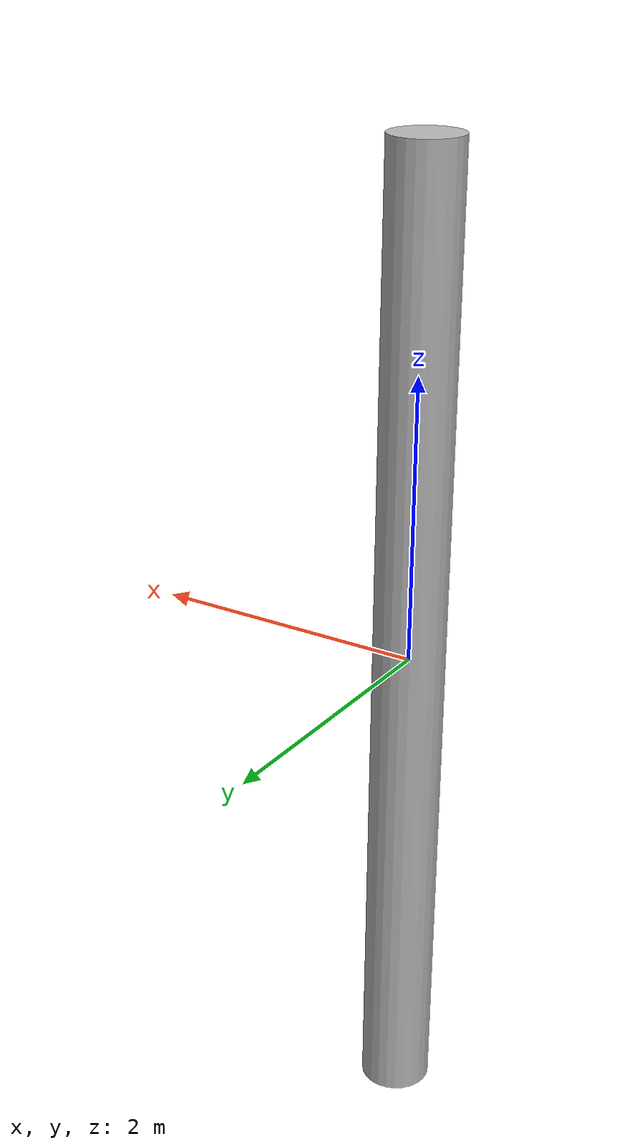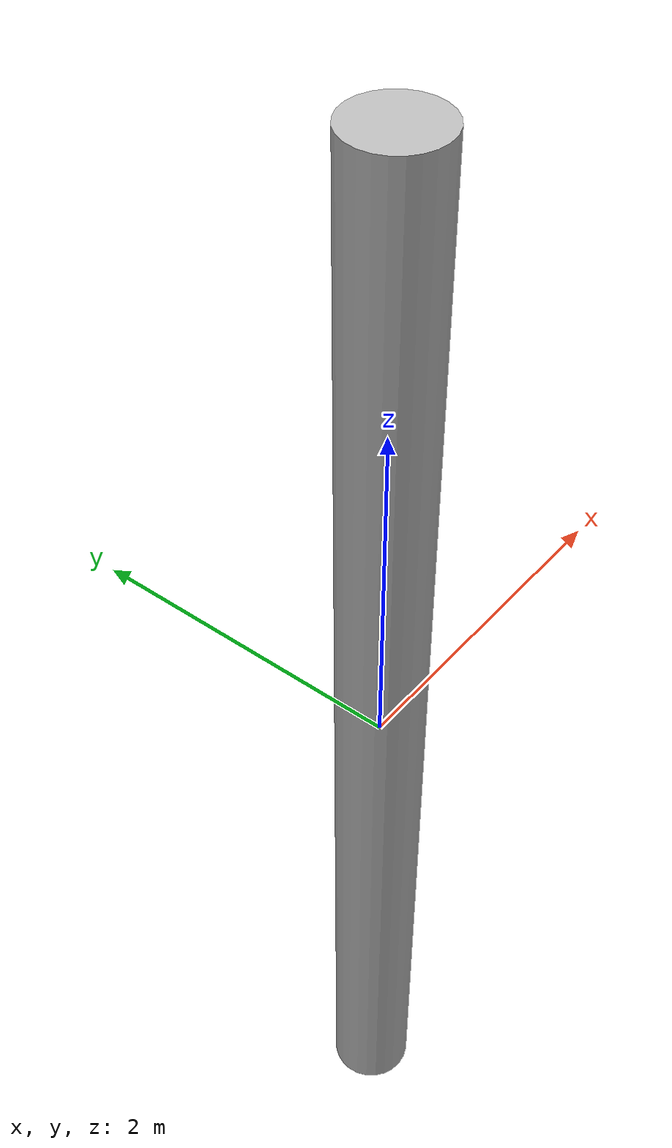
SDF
<?xml version="1.0" ?>
<sdf version="1.5">
  <model name="cylinder_obstacle">
    <static>true</static>
    <link name="link">
      <collision name="collision">
        <geometry>
          <cylinder>
            <radius>0.25</radius>
            <length>7</length>
          </cylinder>
        </geometry>
      </collision>
      <visual name="visual">
        <cast_shadows>false</cast_shadows>
        <geometry>
          <cylinder>
            <radius>0.25</radius>
            <length>7</length>
          </cylinder>
        </geometry>
        <material>
          <script>
            <uri>model://cylinder_obstacle/materials/scripts</uri>
            <uri>model://cylinder_obstacle/materials/textures</uri>
            <name>vrc/obstacle</name>
          </script>
        </material>
      </visual>
    </link>
  </model>
</sdf>
